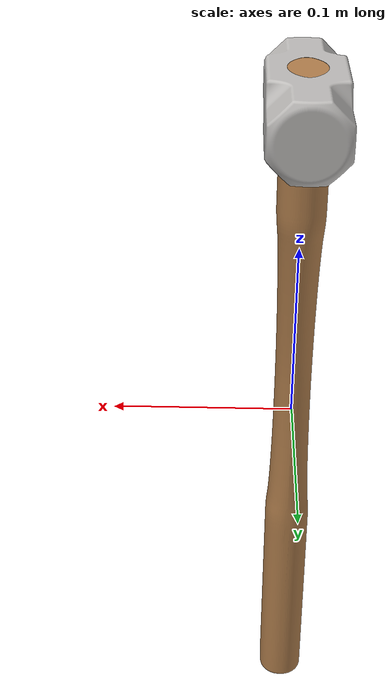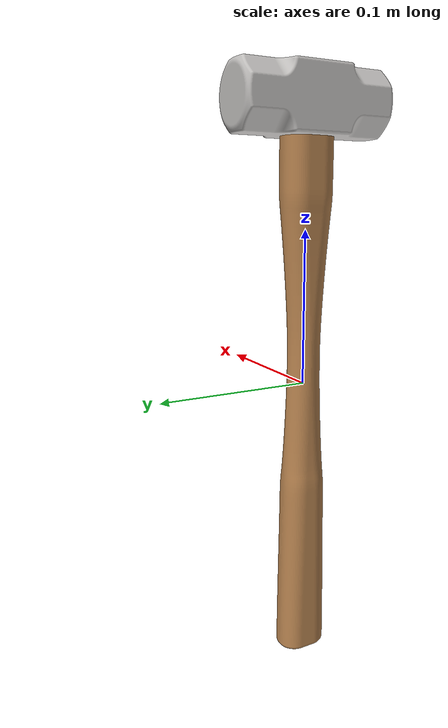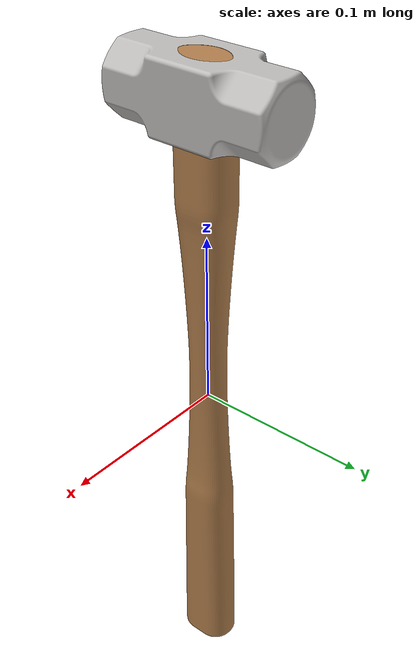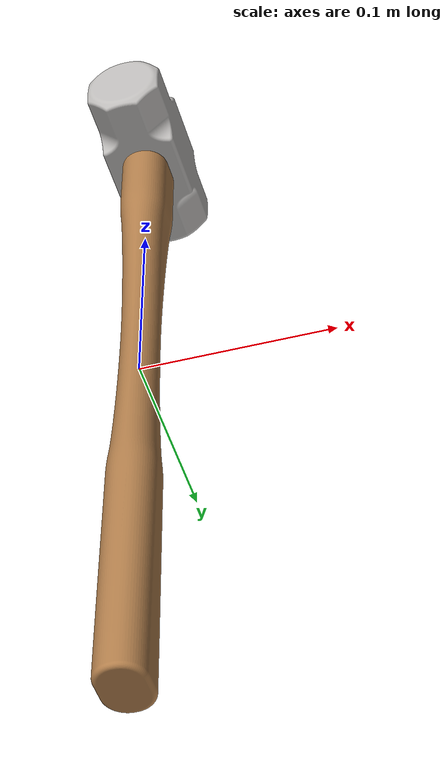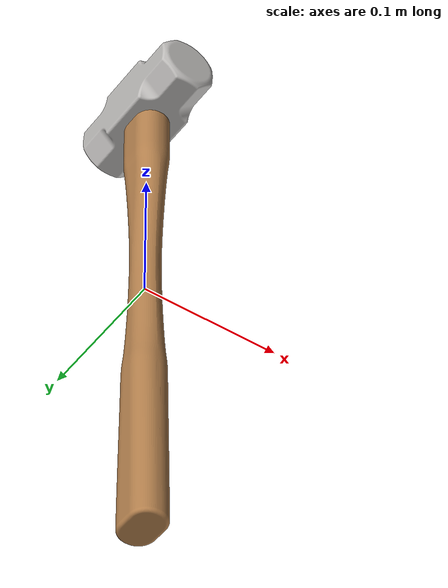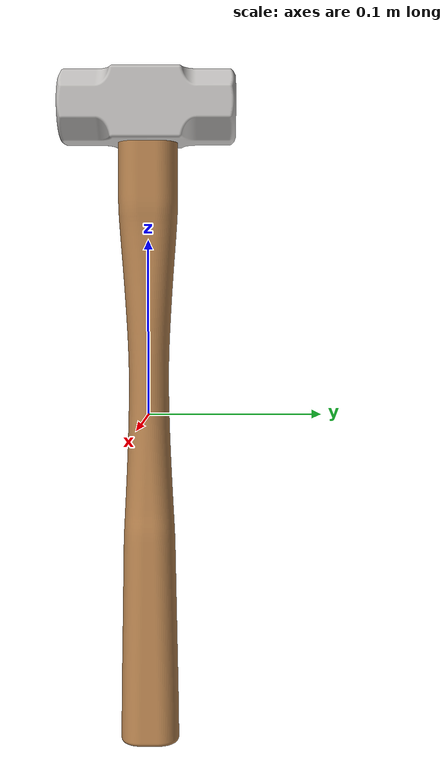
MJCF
<mujoco model="object">
  <default>
    <default class="visual">
      <geom group="2" type="mesh" contype="0" conaffinity="0"/>
    </default>
    <default class="collision">
      <geom group="3" type="mesh"/>
    </default>
  </default>
  <asset>
    <texture type="2d" name="Woods &amp; Plastics.Finish Carpentry.Wood.Red Birch" file="Woods &amp; Plastics.Finish Carpentry.Wood.Red Birch.png"/>
    <material name="255,255,255" texture="Woods &amp; Plastics.Finish Carpentry.Wood.Red Birch" specular="1.0" shininess="1.0"/>
    <material name="190,188,186" specular="0.7372549999999999" shininess="1.0" rgba="0.745098 0.737255 0.729412 1.000000"/>
    <mesh file="object_0.obj"/>
    <mesh file="object_1.obj"/>
  </asset>
  <worldbody>
    <body name="object">
      <geom mesh="object_0" material="190,188,186" class="visual"/>
      <geom mesh="object_1" material="255,255,255" class="visual"/>
      <geom mesh="object_0" class="collision"/>
      <geom mesh="object_1" class="collision"/>
    </body>
  </worldbody>
</mujoco>
